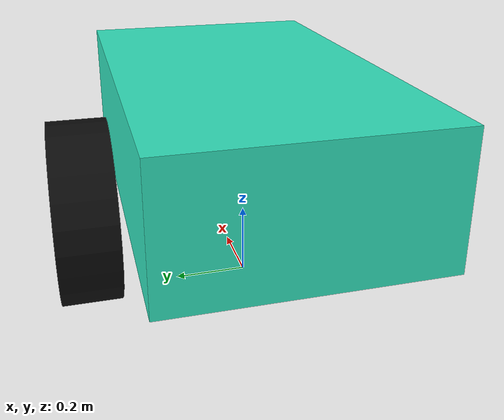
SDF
<?xml version="1.0"?>
<sdf version="1.10">
  <model name="dem_level_vehicle">
    <pose>0 0 0 0 0 0</pose>

    <link name="chassis">
      <pose>0 0 0.45 0 0 0</pose>
      <inertial>
        <mass>2.0</mass>
        <inertia>
          <ixx>0.25</ixx>
          <iyy>0.35</iyy>
          <izz>0.45</izz>
        </inertia>
      </inertial>
      <visual name="visual">
        <geometry>
          <box>
            <size>1.2 0.7 0.35</size>
          </box>
        </geometry>
        <material>
          <ambient>0.2 0.9 0.75 1</ambient>
          <diffuse>0.2 0.9 0.75 1</diffuse>
          <specular>0.1 0.2 0.2 1</specular>
        </material>
      </visual>
      <collision name="collision">
        <geometry>
          <box>
            <size>1.2 0.7 0.35</size>
          </box>
        </geometry>
      </collision>
    </link>

    <link name="left_wheel">
      <pose>0 0.45 0.25 -1.5707 0 0</pose>
      <inertial>
        <mass>0.4</mass>
        <inertia>
          <ixx>0.01</ixx>
          <iyy>0.01</iyy>
          <izz>0.01</izz>
        </inertia>
      </inertial>
      <visual name="visual">
        <geometry>
          <cylinder>
            <radius>0.25</radius>
            <length>0.16</length>
          </cylinder>
        </geometry>
        <material>
          <ambient>0.05 0.05 0.05 1</ambient>
          <diffuse>0.05 0.05 0.05 1</diffuse>
        </material>
      </visual>
      <collision name="collision">
        <geometry>
          <cylinder>
            <radius>0.25</radius>
            <length>0.16</length>
          </cylinder>
        </geometry>
      </collision>
    </link>

    <link name="right_wheel">
      <pose>0 -0.45 0.25 -1.5707 0 0</pose>
      <inertial>
        <mass>0.4</mass>
        <inertia>
          <ixx>0.01</ixx>
          <iyy>0.01</iyy>
          <izz>0.01</izz>
        </inertia>
      </inertial>
      <visual name="visual">
        <geometry>
          <cylinder>
            <radius>0.25</radius>
            <length>0.16</length>
          </cylinder>
        </geometry>
        <material>
          <ambient>0.05 0.05 0.05 1</ambient>
          <diffuse>0.05 0.05 0.05 1</diffuse>
        </material>
      </visual>
      <collision name="collision">
        <geometry>
          <cylinder>
            <radius>0.25</radius>
            <length>0.16</length>
          </cylinder>
        </geometry>
      </collision>
    </link>

    <joint name="left_wheel_joint" type="revolute">
      <parent>chassis</parent>
      <child>left_wheel</child>
      <axis>
        <xyz>0 0 1</xyz>
      </axis>
    </joint>

    <joint name="right_wheel_joint" type="revolute">
      <parent>chassis</parent>
      <child>right_wheel</child>
      <axis>
        <xyz>0 0 1</xyz>
      </axis>
    </joint>

    <plugin filename="gz-sim-diff-drive-system" name="gz::sim::systems::DiffDrive">
      <left_joint>left_wheel_joint</left_joint>
      <right_joint>right_wheel_joint</right_joint>
      <wheel_separation>0.9</wheel_separation>
      <wheel_radius>0.25</wheel_radius>
      <topic>/model/dem_level_vehicle/cmd_vel</topic>
    </plugin>
  </model>
</sdf>
